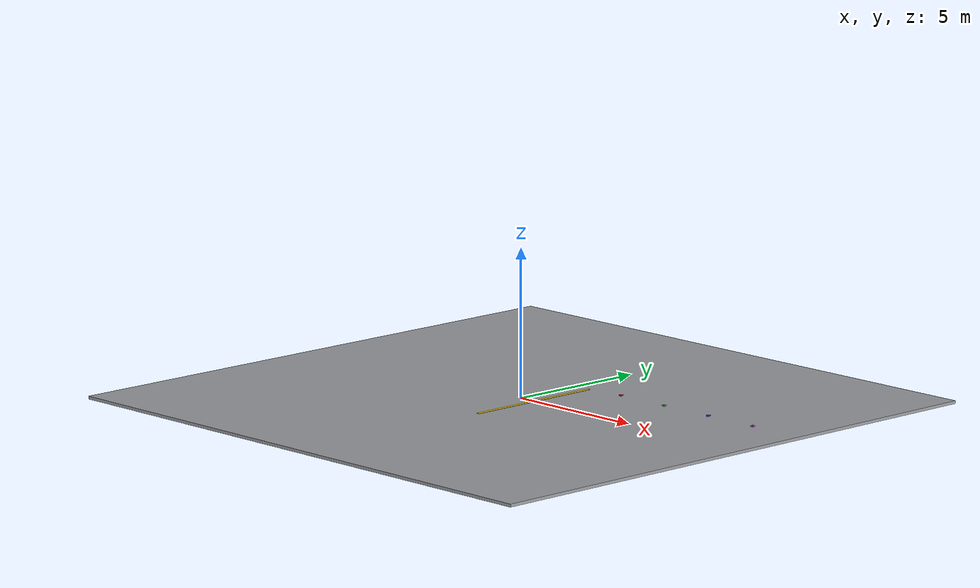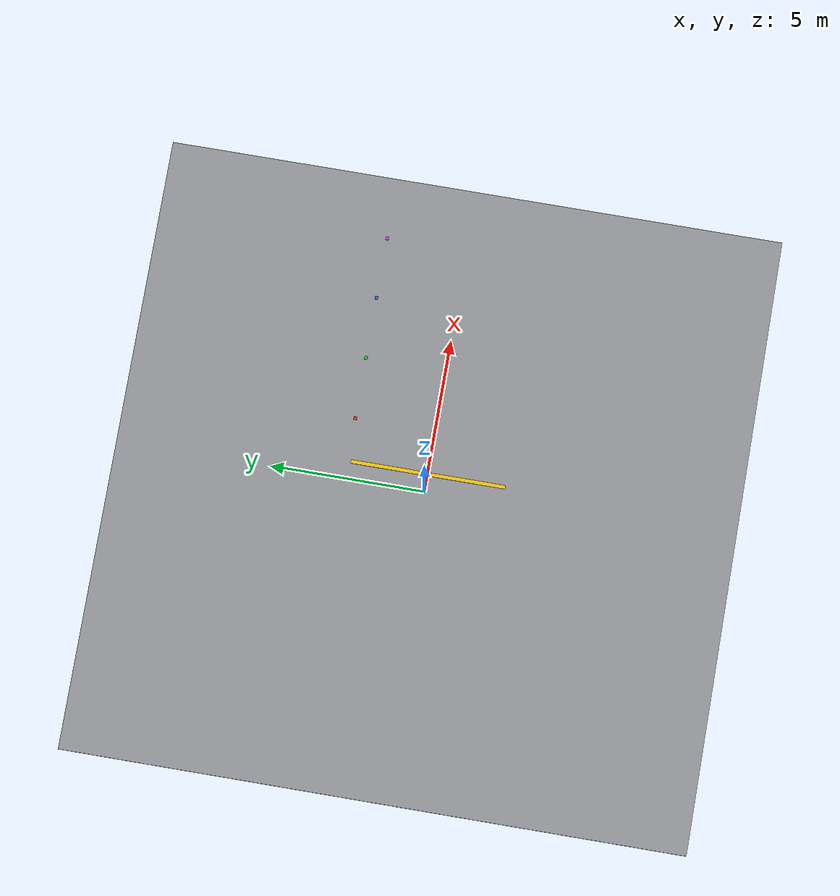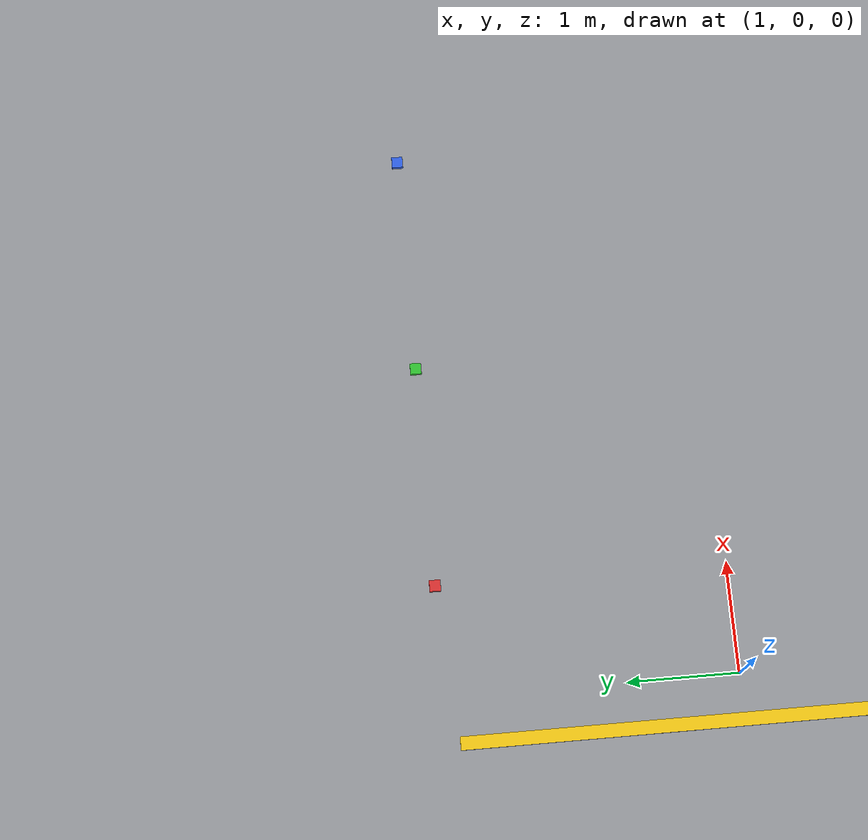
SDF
<?xml version="1.0"?>
<sdf version="1.6">
  <world name="flat">
    <include>
      <uri>model://sun</uri>
    </include>

    <physics type="ode">
      <max_step_size>0.001</max_step_size>
      <real_time_factor>1.0</real_time_factor>
      <real_time_update_rate>1000</real_time_update_rate>
      <ode>
        <solver>
          <type>quick</type>
          <iters>50</iters>
          <sor>1.3</sor>
        </solver>
        <constraints>
          <cfm>0.0</cfm>
          <erp>0.2</erp>
          <contact_max_correcting_vel>100.0</contact_max_correcting_vel>
          <contact_surface_layer>0.001</contact_surface_layer>
        </constraints>
      </ode>
    </physics>

    <scene>
      <ambient>0.55 0.55 0.55 1.0</ambient>
      <background>0.75 0.82 0.90 1.0</background>
      <shadows>true</shadows>
    </scene>

    <gui>
      <camera name="user_camera">
        <pose>1.8 -6.0 3.8 0 0.38 1.5708</pose>
      </camera>
    </gui>

    <model name="ground">
      <static>true</static>
      <pose>0 0 -0.05 0 0 0</pose>
      <link name="link">
        <collision name="collision">
          <geometry>
            <box><size>20 20 0.1</size></box>
          </geometry>
          <surface>
            <friction>
              <ode>
                <mu>1.0</mu>
                <mu2>1.0</mu2>
              </ode>
            </friction>
          </surface>
        </collision>
        <visual name="visual">
          <geometry>
            <box><size>20 20 0.1</size></box>
          </geometry>
          <material>
            <ambient>0.52 0.53 0.55 1.0</ambient>
            <diffuse>0.62 0.63 0.65 1.0</diffuse>
          </material>
        </visual>
      </link>
    </model>

    <!-- 起点线（纯视觉） -->
    <model name="start_line">
      <static>true</static>
      <pose>0.6 0 0.006 0 0 0</pose>
      <link name="link">
        <visual name="visual">
          <geometry>
            <box><size>0.12 5.0 0.012</size></box>
          </geometry>
          <material>
            <ambient>0.95 0.75 0.05 1.0</ambient>
            <diffuse>1.0 0.82 0.08 1.0</diffuse>
          </material>
        </visual>
      </link>
    </model>

    <!-- 每 2 m 一个距离参考块（纯视觉） -->
    <model name="marker_2m">
      <static>true</static>
      <pose>2.0 2.6 0.02 0 0 0</pose>
      <link name="link">
        <visual name="visual">
          <geometry><box><size>0.10 0.10 0.04</size></box></geometry>
          <material><ambient>0.9 0.2 0.2 1.0</ambient><diffuse>0.9 0.2 0.2 1.0</diffuse></material>
        </visual>
      </link>
    </model>
    <model name="marker_4m">
      <static>true</static>
      <pose>4.0 2.6 0.02 0 0 0</pose>
      <link name="link">
        <visual name="visual">
          <geometry><box><size>0.10 0.10 0.04</size></box></geometry>
          <material><ambient>0.2 0.8 0.2 1.0</ambient><diffuse>0.2 0.8 0.2 1.0</diffuse></material>
        </visual>
      </link>
    </model>
    <model name="marker_6m">
      <static>true</static>
      <pose>6.0 2.6 0.02 0 0 0</pose>
      <link name="link">
        <visual name="visual">
          <geometry><box><size>0.10 0.10 0.04</size></box></geometry>
          <material><ambient>0.2 0.4 0.95 1.0</ambient><diffuse>0.2 0.4 0.95 1.0</diffuse></material>
        </visual>
      </link>
    </model>
    <model name="marker_8m">
      <static>true</static>
      <pose>8.0 2.6 0.02 0 0 0</pose>
      <link name="link">
        <visual name="visual">
          <geometry><box><size>0.10 0.10 0.04</size></box></geometry>
          <material><ambient>0.8 0.3 0.9 1.0</ambient><diffuse>0.8 0.3 0.9 1.0</diffuse></material>
        </visual>
      </link>
    </model>

  </world>
</sdf>
